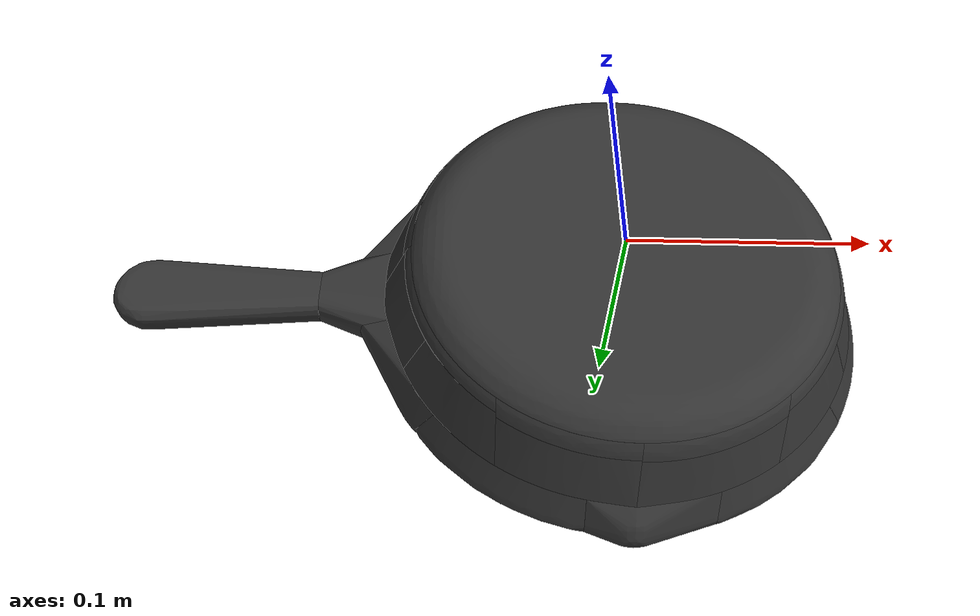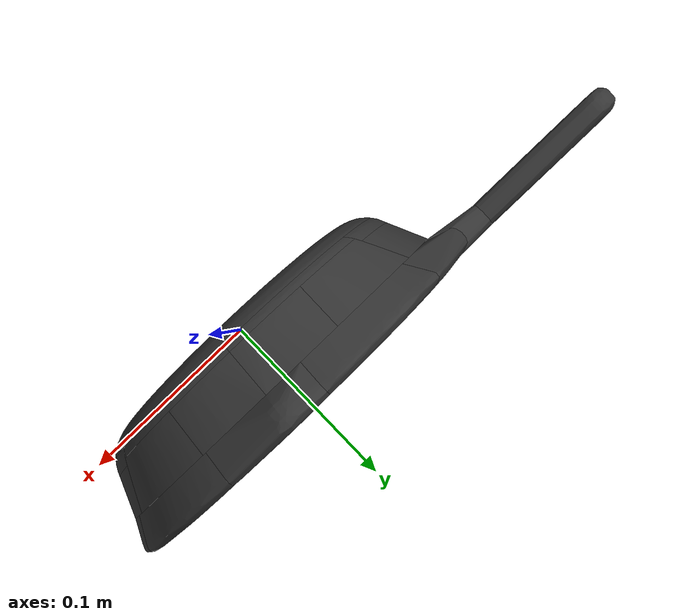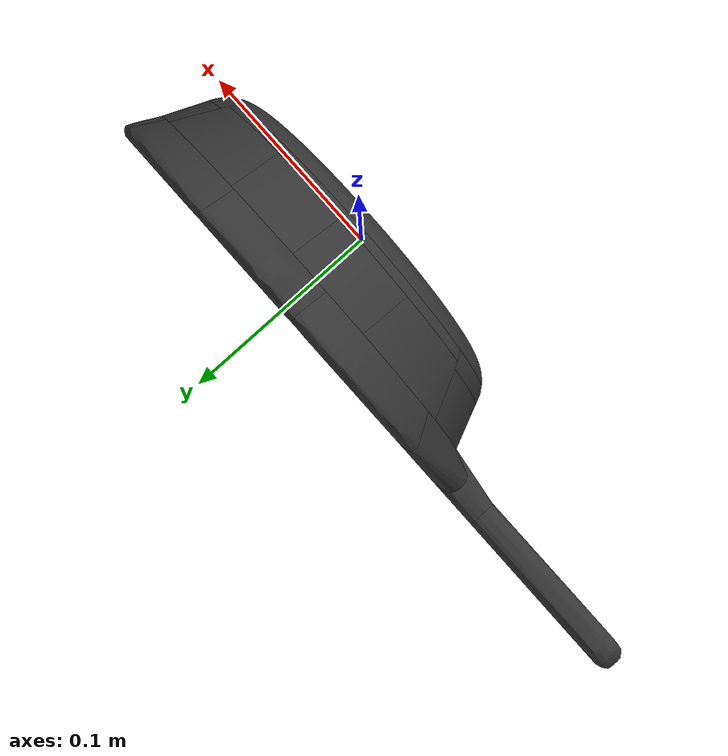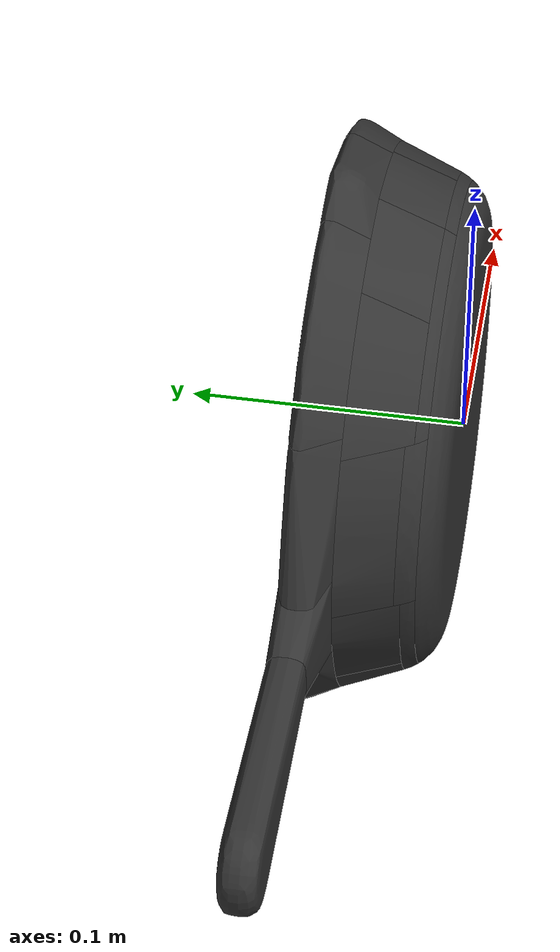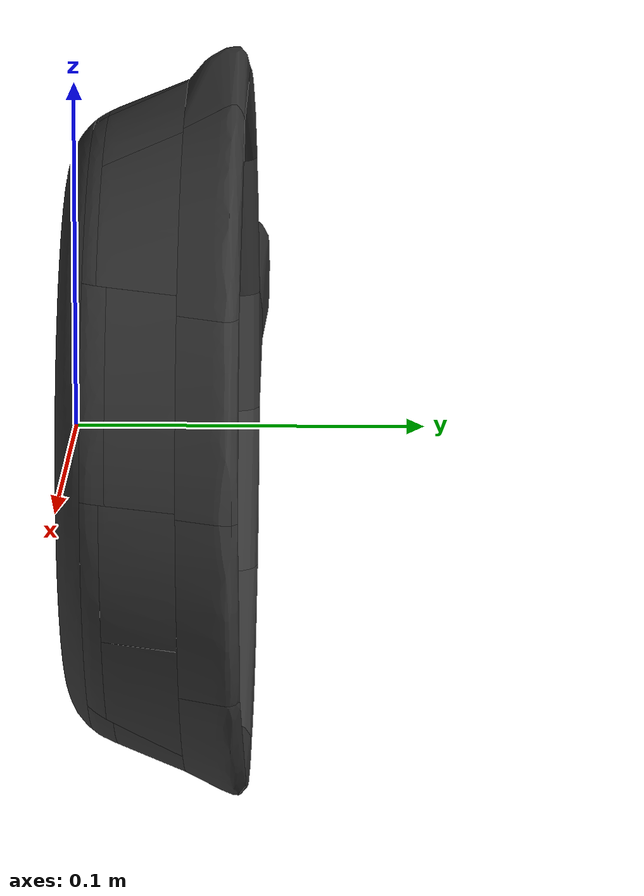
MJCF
<mujoco model="skillet">
  <asset>
    <texture file="meshes/metal.png" name="tex-metal" type="2d" />
    <material name="wood" reflectance="0.5" texrepeat="1 1" texture="tex-metal" texuniform="false" />
    <material name="default_mat" rgba="0.2 0.2 0.2 1" specular="0.0" shininess="0.0"/>
    <mesh file="./skillet/skillet/skillet.obj" name="skillet_mesh" scale = "0.0015 0.0015 0.0015"/>
    <mesh file="./skillet/skillet/skillet_collision_0.obj" name = "collision_0"/>
    <mesh file="./skillet/skillet/skillet_collision_1.obj" name = "collision_1"/>
    <mesh file="./skillet/skillet/skillet_collision_2.obj" name = "collision_2"/>
    <mesh file="./skillet/skillet/skillet_collision_3.obj" name = "collision_3"/>
    <mesh file="./skillet/skillet/skillet_collision_4.obj" name = "collision_4"/>
    <mesh file="./skillet/skillet/skillet_collision_5.obj" name = "collision_5"/>
    <mesh file="./skillet/skillet/skillet_collision_6.obj" name = "collision_6"/>
    <mesh file="./skillet/skillet/skillet_collision_7.obj" name = "collision_7"/>
    <mesh file="./skillet/skillet/skillet_collision_8.obj" name = "collision_8"/>
    <mesh file="./skillet/skillet/skillet_collision_9.obj" name = "collision_9"/>
    <mesh file="./skillet/skillet/skillet_collision_10.obj" name = "collision_10"/>
    <mesh file="./skillet/skillet/skillet_collision_11.obj" name = "collision_11"/>
    <mesh file="./skillet/skillet/skillet_collision_12.obj" name = "collision_12"/>
    <mesh file="./skillet/skillet/skillet_collision_13.obj" name = "collision_13"/>
    <mesh file="./skillet/skillet/skillet_collision_14.obj" name = "collision_14"/>
    <mesh file="./skillet/skillet/skillet_collision_15.obj" name = "collision_15"/>
    <mesh file="./skillet/skillet/skillet_collision_16.obj" name = "collision_16"/>
    <mesh file="./skillet/skillet/skillet_collision_17.obj" name = "collision_17"/>
    <mesh file="./skillet/skillet/skillet_collision_18.obj" name = "collision_18"/>
    <mesh file="./skillet/skillet/skillet_collision_19.obj" name = "collision_19"/>
    <mesh file="./skillet/skillet/skillet_collision_20.obj" name = "collision_20"/>
    <mesh file="./skillet/skillet/skillet_collision_21.obj" name = "collision_21"/>
    <mesh file="./skillet/skillet/skillet_collision_22.obj" name = "collision_22"/>
    <mesh file="./skillet/skillet/skillet_collision_23.obj" name = "collision_23"/>
    <mesh file="./skillet/skillet/skillet_collision_24.obj" name = "collision_24"/>
    <mesh file="./skillet/skillet/skillet_collision_25.obj" name = "collision_25"/>
    <mesh file="./skillet/skillet/skillet_collision_26.obj" name = "collision_26"/>
    <mesh file="./skillet/skillet/skillet_collision_27.obj" name = "collision_27"/>
    <mesh file="./skillet/skillet/skillet_collision_28.obj" name = "collision_28"/>
    <mesh file="./skillet/skillet/skillet_collision_29.obj" name = "collision_29"/>
    <mesh file="./skillet/skillet/skillet_collision_30.obj" name = "collision_30"/>
    <mesh file="./skillet/skillet/skillet_collision_31.obj" name = "collision_31"/>
    <mesh file="./skillet/skillet/skillet_collision_32.obj" name = "collision_32"/>
    <!-- Add other collision meshes if needed -->
  </asset>

  <default>
    <default class="visual">
      <geom group="1" type="mesh" contype="0" conaffinity="0"/>
    </default>
    <default class="collision">
      <geom group="1" type="mesh"/>
    </default>
  </default>

  <worldbody>
    <body >
    <body name="object" >
      <!-- Main visual mesh -->
      <geom mesh="skillet_mesh" material="default_mat" class="visual" pos="0 0 0"/>
      <!-- Collision geoms for skillet -->
      <geom solimp="0.9 0.95 0.01" solref="0.02 1" density="200" friction="2.05 1.4 0.15" type="mesh" mesh="collision_0" class="collision" material="default_mat" />
      <geom solimp="0.9 0.95 0.01" solref="0.02 1" density="200" friction="2.05 1.4 0.15" type="mesh" mesh="collision_1" class="collision" material="default_mat" />
      <geom solimp="0.9 0.95 0.01" solref="0.02 1" density="200" friction="2.05 1.4 0.15" type="mesh" mesh="collision_2" class="collision" material="default_mat" />
      <geom solimp="0.9 0.95 0.01" solref="0.02 1" density="200" friction="2.05 1.4 0.15" type="mesh" mesh="collision_3" class="collision" material="default_mat" />
      <geom solimp="0.9 0.95 0.01" solref="0.02 1" density="200" friction="2.05 1.4 0.15" type="mesh" mesh="collision_4" class="collision" material="default_mat" />
      <geom solimp="0.9 0.95 0.01" solref="0.02 1" density="200" friction="2.05 1.4 0.15" type="mesh" mesh="collision_5" class="collision" material="default_mat" />
      <geom solimp="0.9 0.95 0.01" solref="0.02 1" density="200" friction="2.05 1.4 0.15" type="mesh" mesh="collision_6" class="collision" material="default_mat" />
      <geom solimp="0.9 0.95 0.01" solref="0.02 1" density="200" friction="2.05 1.4 0.15" type="mesh" mesh="collision_7" class="collision" material="default_mat" />
      <geom solimp="0.9 0.95 0.01" solref="0.02 1" density="200" friction="2.05 1.4 0.15" type="mesh" mesh="collision_8" class="collision" material="default_mat" />
      <geom solimp="0.9 0.95 0.01" solref="0.02 1" density="200" friction="2.05 1.4 0.15" type="mesh" mesh="collision_9" class="collision" material="default_mat" />
      <geom solimp="0.9 0.95 0.01" solref="0.02 1" density="200" friction="2.05 1.4 0.15" type="mesh" mesh="collision_10" class="collision" material="default_mat" />
      <geom solimp="0.9 0.95 0.01" solref="0.02 1" density="200" friction="2.05 1.4 0.15" type="mesh" mesh="collision_11"  class="collision" material="default_mat" />
      <geom solimp="0.9 0.95 0.01" solref="0.02 1" density="200" friction="2.05 1.4 0.15" type="mesh" mesh="collision_12" class="collision" material="default_mat" />
      <geom solimp="0.9 0.95 0.01" solref="0.02 1" density="200" friction="2.05 1.4 0.15" type="mesh" mesh="collision_13" class="collision" material="default_mat" />
      <geom solimp="0.9 0.95 0.01" solref="0.02 1" density="200" friction="2.05 1.4 0.15" type="mesh" mesh="collision_14"  class="collision" material="default_mat" />
      <geom solimp="0.9 0.95 0.01" solref="0.02 1" density="200" friction="2.05 1.4 0.15" type="mesh" mesh="collision_15" class="collision" material="default_mat" />
      <geom solimp="0.9 0.95 0.01" solref="0.02 1" density="200" friction="2.05 1.4 0.15" type="mesh" mesh="collision_16" class="collision" material="default_mat" />
      <geom solimp="0.9 0.95 0.01" solref="0.02 1" density="200" friction="2.05 1.4 0.15" type="mesh" mesh="collision_17" class="collision" material="default_mat" />
      <geom solimp="0.9 0.95 0.01" solref="0.02 1" density="200" friction="2.05 1.4 0.15" type="mesh" mesh="collision_18" class="collision" material="default_mat" />
      <geom solimp="0.9 0.95 0.01" solref="0.02 1" density="200" friction="2.05 1.4 0.15" type="mesh" mesh="collision_19"  class="collision" material="default_mat" />
      <geom solimp="0.9 0.95 0.01" solref="0.02 1" density="200" friction="2.05 1.4 0.15" type="mesh" mesh="collision_20"  class="collision" material="default_mat" />
      <geom solimp="0.9 0.95 0.01" solref="0.02 1" density="200" friction="2.05 1.4 0.15" type="mesh" mesh="collision_21" class="collision" material="default_mat" />
      <geom solimp="0.9 0.95 0.01" solref="0.02 1" density="200" friction="2.05 1.4 0.15" type="mesh" mesh="collision_22" class="collision" material="default_mat" />
      <geom solimp="0.9 0.95 0.01" solref="0.02 1" density="200" friction="2.05 1.4 0.15" type="mesh" mesh="collision_23" class="collision" material="default_mat" />
      <geom solimp="0.9 0.95 0.01" solref="0.02 1" density="200" friction="2.05 1.4 0.15" type="mesh" mesh="collision_24" class="collision" material="default_mat" />
      <geom solimp="0.9 0.95 0.01" solref="0.02 1" density="200" friction="2.05 1.4 0.15" type="mesh" mesh="collision_25" class="collision" material="default_mat" />
      <geom solimp="0.9 0.95 0.01" solref="0.02 1" density="200" friction="2.05 1.4 0.15" type="mesh" mesh="collision_26" class="collision" material="default_mat" />
      <geom solimp="0.9 0.95 0.01" solref="0.02 1" density="200" friction="2.05 1.4 0.15" type="mesh" mesh="collision_27" class="collision" material="default_mat" />
      <geom solimp="0.9 0.95 0.01" solref="0.02 1" density="200" friction="2.05 1.4 0.15" type="mesh" mesh="collision_28" class="collision" material="default_mat" />
      <geom solimp="0.9 0.95 0.01" solref="0.02 1" density="200" friction="2.05 1.4 0.15" type="mesh" mesh="collision_29" class="collision" material="default_mat" />
      <geom solimp="0.9 0.95 0.01" solref="0.02 1" density="200" friction="2.05 1.4 0.15" type="mesh" mesh="collision_30" class="collision" material="default_mat" />
      <geom solimp="0.9 0.95 0.01" solref="0.02 1" density="200" friction="2.05 1.4 0.15" type="mesh" mesh="collision_31" class="collision" material="default_mat" />
      <geom solimp="0.9 0.95 0.01" solref="0.02 1" density="200" friction="2.05 1.4 0.15" type="mesh" mesh="collision_32" class="collision" material="default_mat" />
        <inertial mass="4.0" pos="0 0 0" diaginertia="0.5 0.5 0.5" />

      <!-- Add more collision geoms if needed -->
    </body>

    <site rgba="0 0 0 0" size="0.005" pos="0 0 -0.02" name="bottom_site" />
    <site rgba="0 0 0 0" size="0.005" pos="0 0 0.02" name="top_site" />
    <site rgba="0 0 0 0" size="0.005" pos="0.02 0.02 0" name="horizontal_radius_site" />
    </body>
  </worldbody>
</mujoco>
